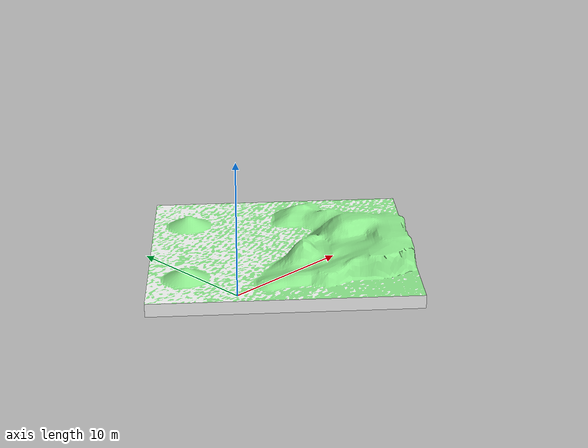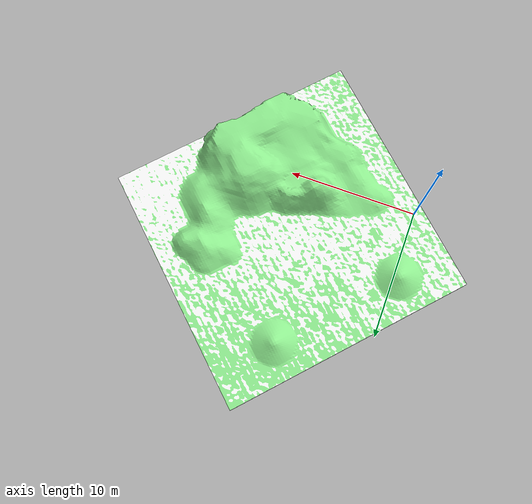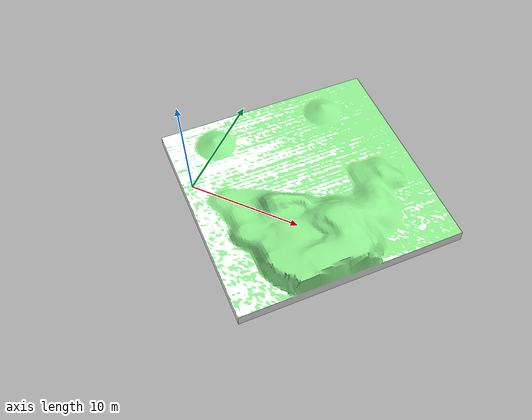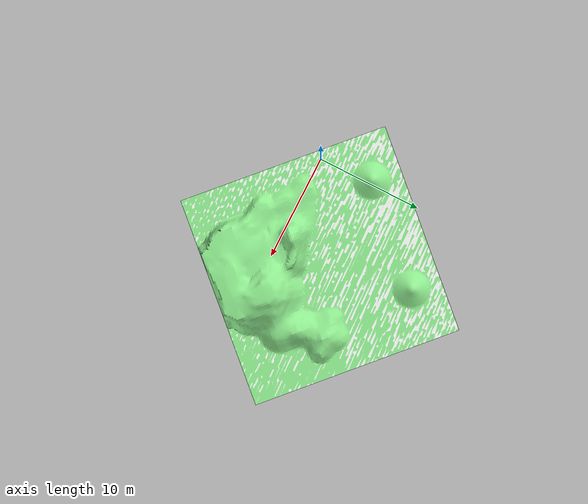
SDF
<sdf version="1.7">
 <world name="default">
  <light name="sun" type="directional">
   <pose>0 0 10 0 -0 0</pose>
   <diffuse>0.8 0.8 0.8 1</diffuse>
   <specular>0.2 0.2 0.2 1</specular>
   <attenuation>
    <range>1000</range>
    <constant>0.9</constant>
    <linear>0.01</linear>
    <quadratic>0.001</quadratic>
   </attenuation>
   <direction>-0.5 0.1 -0.9</direction>
   <spot><inner_angle>0</inner_angle><outer_angle>0</outer_angle><falloff>0</falloff></spot>
  </light>
  <model name="Map1">
   <pose>8.74272 4.40932 -0.162787 0.016079 -0.017334 -2.31874</pose>
   <static>1</static>
   <link name="link">
    <collision name="collision">
     <geometry><mesh><uri>model://map1/meshes/map1.dae</uri><scale>1 1 0.5</scale></mesh></geometry>
    </collision>
    <visual name="visual">
     <geometry><mesh><uri>model://map1/meshes/map1.dae</uri><scale>1 1 0.5</scale></mesh></geometry>
     <material>
      <script>
       <uri>model://map1/materials/scripts</uri>
       <uri>model://map1/materials/textures</uri>
       <name>Map1/Image</name>
      </script>
     </material>
    </visual>
   </link>
  </model>
  <gravity>0 0 -9.8</gravity>
  <magnetic_field>6e-06 2.3e-05 -4.2e-05</magnetic_field>
  <atmosphere type="adiabatic"/>
  <physics type="ode">
   <max_step_size>0.001</max_step_size>
   <real_time_factor>1</real_time_factor>
   <real_time_update_rate>1000</real_time_update_rate>
  </physics>
  <scene><ambient>0.4 0.4 0.4 1</ambient><background>0.7 0.7 0.7 1</background><shadows>1</shadows></scene>
  <spherical_coordinates>
   <surface_model>EARTH_WGS84</surface_model>
   <latitude_deg>0</latitude_deg>
   <longitude_deg>0</longitude_deg>
   <elevation>0</elevation>
   <heading_deg>0</heading_deg>
  </spherical_coordinates>
 </world>
</sdf>
